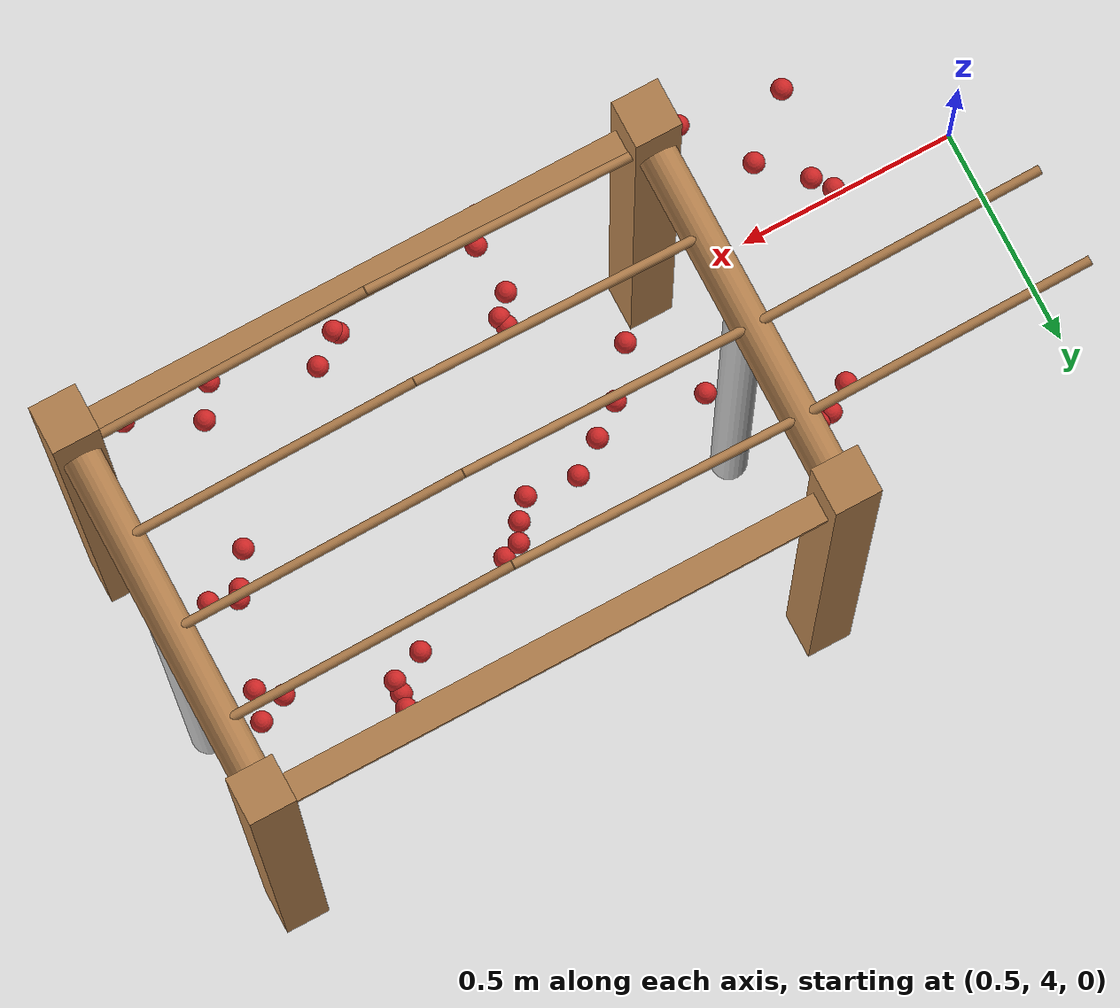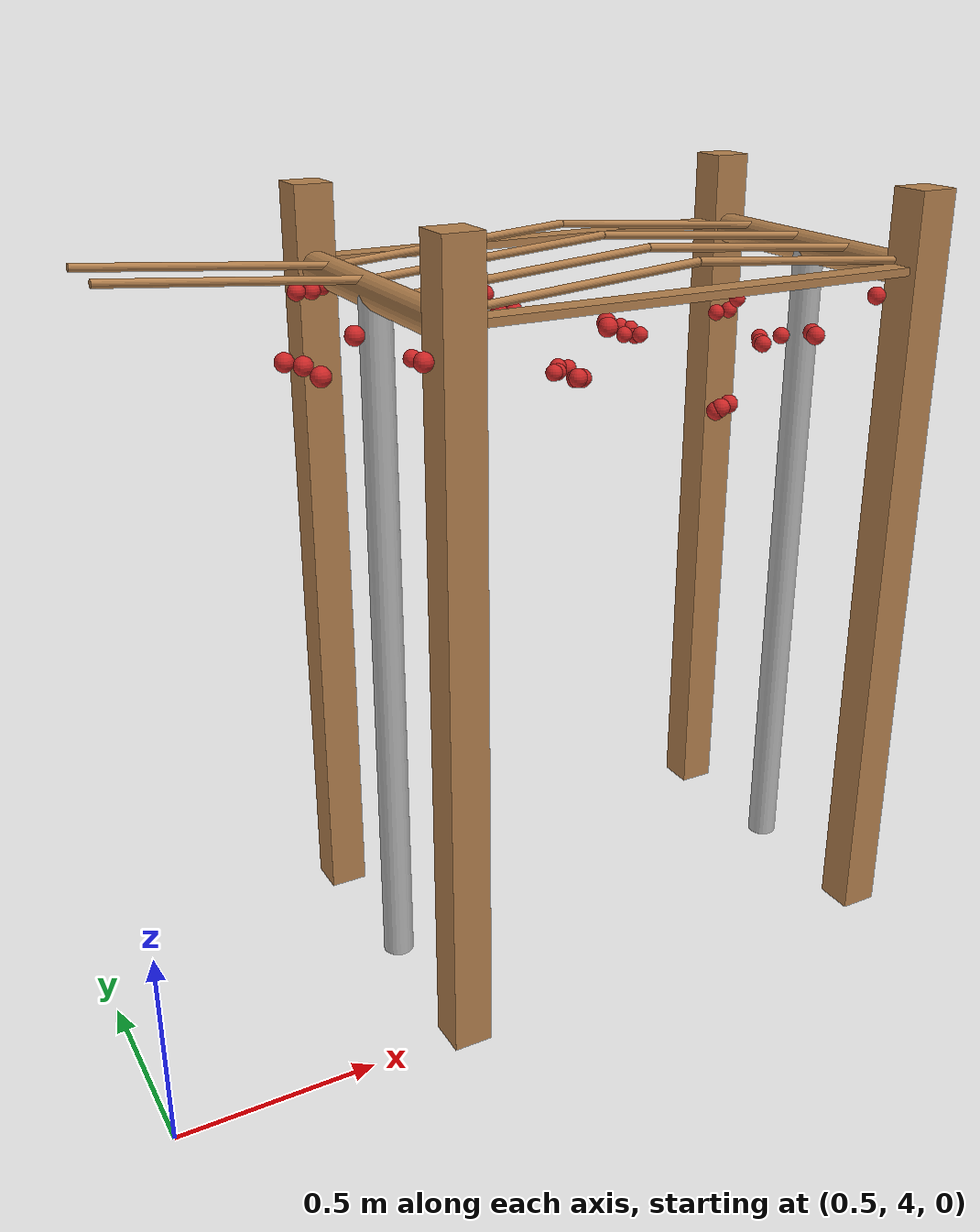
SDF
<sdf version="1.4">
 <model name="pergola">
  <include><name>post_12</name><pose>1.25 4.0 0 0 0 0</pose><uri>model://post</uri></include>
  <include><name>post_13</name><pose>1.25 4.800000000000001 0 0 0 0</pose><uri>model://post</uri></include>
  <include><name>post_19</name><pose>2.5 4.0 0 0 0 0</pose><uri>model://post</uri></include>
  <include><name>post_20</name><pose>2.5 4.800000000000001 0 0 0 0</pose><uri>model://post</uri></include>
  <link name="beam_12">
   <pose>1.875 4.0 1.81 0 0 0</pose>
   <collision name="collision"><geometry><box><size>1.25 0.06 0.02</size></box></geometry></collision>
   <visual name="visual">
    <geometry><box><size>1.25 0.06 0.02</size></box></geometry>
    <material><script><name>Gazebo/Wood</name></script></material>
   </visual>
   <inertial>
    <mass>5</mass>
    <inertia>
     <ixx>0.0016666666666666668</ixx>
     <ixy>0.0</ixy>
     <ixz>0.0</ixz>
     <iyy>0.6525416666666667</iyy>
     <iyz>0.0</iyz>
     <izz>0.6512083333333333</izz>
    </inertia>
   </inertial>
  </link>
  <link name="beam_13">
   <pose>1.875 4.800000000000001 1.81 0 0 0</pose>
   <collision name="collision"><geometry><box><size>1.25 0.06 0.02</size></box></geometry></collision>
   <visual name="visual">
    <geometry><box><size>1.25 0.06 0.02</size></box></geometry>
    <material><script><name>Gazebo/Wood</name></script></material>
   </visual>
   <inertial>
    <mass>5</mass>
    <inertia>
     <ixx>0.0016666666666666668</ixx>
     <ixy>0.0</ixy>
     <ixz>0.0</ixz>
     <iyy>0.6525416666666667</iyy>
     <iyz>0.0</iyz>
     <izz>0.6512083333333333</izz>
    </inertia>
   </inertial>
  </link>
  <include><name>tree_11</name><pose>1.25 4.4 0 0 0 0</pose><uri>model://tree_trunk</uri></include>
  <include><name>tree_17</name><pose>2.5 4.4 0 0 0 0</pose><uri>model://tree_trunk</uri></include>
  <link name="baseBranch_11">
   <pose>1.25 4.4 1.8 1.5707963267948966 0 0</pose>
   <collision name="collision">
    <geometry><cylinder><radius>0.04</radius><length>0.74</length></cylinder></geometry>
   </collision>
   <visual name="visual">
    <geometry><cylinder><radius>0.04</radius><length>0.74</length></cylinder></geometry>
    <material><script><name>Gazebo/WoodFloor</name></script></material>
   </visual>
   <inertial>
    <mass>10</mass>
    <inertia>
     <ixx>0.4603333333333333</ixx>
     <ixy>0.0</ixy>
     <ixz>0.0</ixz>
     <iyy>0.4603333333333333</iyy>
     <iyz>0.0</iyz>
     <izz>0.008</izz>
    </inertia>
   </inertial>
  </link>
  <link name="baseBranch_17">
   <pose>2.5 4.4 1.8 1.5707963267948966 0 0</pose>
   <collision name="collision">
    <geometry><cylinder><radius>0.04</radius><length>0.74</length></cylinder></geometry>
   </collision>
   <visual name="visual">
    <geometry><cylinder><radius>0.04</radius><length>0.74</length></cylinder></geometry>
    <material><script><name>Gazebo/WoodFloor</name></script></material>
   </visual>
   <inertial>
    <mass>10</mass>
    <inertia>
     <ixx>0.4603333333333333</ixx>
     <ixy>0.0</ixy>
     <ixz>0.0</ixz>
     <iyy>0.4603333333333333</iyy>
     <iyz>0.0</iyz>
     <izz>0.008</izz>
    </inertia>
   </inertial>
  </link>
  <link name="vine_45">
   <pose>0.9375 4.430000000000001 1.85 0 -1.4909663410826592 0</pose>
   <collision name="collision">
    <geometry><cylinder><radius>0.01</radius><length>0.6269968101992226</length></cylinder></geometry>
   </collision>
   <visual name="visual">
    <geometry><cylinder><radius>0.01</radius><length>0.6269968101992226</length></cylinder></geometry>
    <material><script><name>Gazebo/WoodFloor</name></script></material>
   </visual>
   <inertial>
    <mass>5</mass>
    <inertia>
     <ixx>0.1639270833333333</ixx>
     <ixy>0.0</ixy>
     <ixz>0.0</ixz>
     <iyy>0.1639270833333333</iyy>
     <iyz>0.0</iyz>
     <izz>0.00025</izz>
    </inertia>
   </inertial>
  </link>
  <link name="vine_47">
   <pose>0.9375 4.630000000000001 1.85 0 -1.4909663410826592 0</pose>
   <collision name="collision">
    <geometry><cylinder><radius>0.01</radius><length>0.6269968101992226</length></cylinder></geometry>
   </collision>
   <visual name="visual">
    <geometry><cylinder><radius>0.01</radius><length>0.6269968101992226</length></cylinder></geometry>
    <material><script><name>Gazebo/WoodFloor</name></script></material>
   </visual>
   <inertial>
    <mass>5</mass>
    <inertia>
     <ixx>0.1639270833333333</ixx>
     <ixy>0.0</ixy>
     <ixz>0.0</ixz>
     <iyy>0.1639270833333333</iyy>
     <iyz>0.0</iyz>
     <izz>0.00025</izz>
    </inertia>
   </inertial>
  </link>
  <link name="vine_88">
   <pose>1.5625 4.03 1.85 0 1.4909663410826592 0</pose>
   <collision name="collision">
    <geometry><cylinder><radius>0.01</radius><length>0.6269968101992226</length></cylinder></geometry>
   </collision>
   <visual name="visual">
    <geometry><cylinder><radius>0.01</radius><length>0.6269968101992226</length></cylinder></geometry>
    <material><script><name>Gazebo/WoodFloor</name></script></material>
   </visual>
   <inertial>
    <mass>5</mass>
    <inertia>
     <ixx>0.1639270833333333</ixx>
     <ixy>0.0</ixy>
     <ixz>0.0</ixz>
     <iyy>0.1639270833333333</iyy>
     <iyz>0.0</iyz>
     <izz>0.00025</izz>
    </inertia>
   </inertial>
  </link>
  <link name="vine_89">
   <pose>2.1875 4.03 1.85 0 -1.4909663410826592 0</pose>
   <collision name="collision">
    <geometry><cylinder><radius>0.01</radius><length>0.6269968101992226</length></cylinder></geometry>
   </collision>
   <visual name="visual">
    <geometry><cylinder><radius>0.01</radius><length>0.6269968101992226</length></cylinder></geometry>
    <material><script><name>Gazebo/WoodFloor</name></script></material>
   </visual>
   <inertial>
    <mass>5</mass>
    <inertia>
     <ixx>0.1639270833333333</ixx>
     <ixy>0.0</ixy>
     <ixz>0.0</ixz>
     <iyy>0.1639270833333333</iyy>
     <iyz>0.0</iyz>
     <izz>0.00025</izz>
    </inertia>
   </inertial>
  </link>
  <link name="vine_90">
   <pose>1.5625 4.23 1.85 0 1.4909663410826592 0</pose>
   <collision name="collision">
    <geometry><cylinder><radius>0.01</radius><length>0.6269968101992226</length></cylinder></geometry>
   </collision>
   <visual name="visual">
    <geometry><cylinder><radius>0.01</radius><length>0.6269968101992226</length></cylinder></geometry>
    <material><script><name>Gazebo/WoodFloor</name></script></material>
   </visual>
   <inertial>
    <mass>5</mass>
    <inertia>
     <ixx>0.1639270833333333</ixx>
     <ixy>0.0</ixy>
     <ixz>0.0</ixz>
     <iyy>0.1639270833333333</iyy>
     <iyz>0.0</iyz>
     <izz>0.00025</izz>
    </inertia>
   </inertial>
  </link>
  <link name="vine_91">
   <pose>2.1875 4.23 1.85 0 -1.4909663410826592 0</pose>
   <collision name="collision">
    <geometry><cylinder><radius>0.01</radius><length>0.6269968101992226</length></cylinder></geometry>
   </collision>
   <visual name="visual">
    <geometry><cylinder><radius>0.01</radius><length>0.6269968101992226</length></cylinder></geometry>
    <material><script><name>Gazebo/WoodFloor</name></script></material>
   </visual>
   <inertial>
    <mass>5</mass>
    <inertia>
     <ixx>0.1639270833333333</ixx>
     <ixy>0.0</ixy>
     <ixz>0.0</ixz>
     <iyy>0.1639270833333333</iyy>
     <iyz>0.0</iyz>
     <izz>0.00025</izz>
    </inertia>
   </inertial>
  </link>
  <link name="vine_92">
   <pose>1.5625 4.430000000000001 1.85 0 1.4909663410826592 0</pose>
   <collision name="collision">
    <geometry><cylinder><radius>0.01</radius><length>0.6269968101992226</length></cylinder></geometry>
   </collision>
   <visual name="visual">
    <geometry><cylinder><radius>0.01</radius><length>0.6269968101992226</length></cylinder></geometry>
    <material><script><name>Gazebo/WoodFloor</name></script></material>
   </visual>
   <inertial>
    <mass>5</mass>
    <inertia>
     <ixx>0.1639270833333333</ixx>
     <ixy>0.0</ixy>
     <ixz>0.0</ixz>
     <iyy>0.1639270833333333</iyy>
     <iyz>0.0</iyz>
     <izz>0.00025</izz>
    </inertia>
   </inertial>
  </link>
  <link name="vine_93">
   <pose>2.1875 4.430000000000001 1.85 0 -1.4909663410826592 0</pose>
   <collision name="collision">
    <geometry><cylinder><radius>0.01</radius><length>0.6269968101992226</length></cylinder></geometry>
   </collision>
   <visual name="visual">
    <geometry><cylinder><radius>0.01</radius><length>0.6269968101992226</length></cylinder></geometry>
    <material><script><name>Gazebo/WoodFloor</name></script></material>
   </visual>
   <inertial>
    <mass>5</mass>
    <inertia>
     <ixx>0.1639270833333333</ixx>
     <ixy>0.0</ixy>
     <ixz>0.0</ixz>
     <iyy>0.1639270833333333</iyy>
     <iyz>0.0</iyz>
     <izz>0.00025</izz>
    </inertia>
   </inertial>
  </link>
  <link name="vine_94">
   <pose>1.5625 4.630000000000001 1.85 0 1.4909663410826592 0</pose>
   <collision name="collision">
    <geometry><cylinder><radius>0.01</radius><length>0.6269968101992226</length></cylinder></geometry>
   </collision>
   <visual name="visual">
    <geometry><cylinder><radius>0.01</radius><length>0.6269968101992226</length></cylinder></geometry>
    <material><script><name>Gazebo/WoodFloor</name></script></material>
   </visual>
   <inertial>
    <mass>5</mass>
    <inertia>
     <ixx>0.1639270833333333</ixx>
     <ixy>0.0</ixy>
     <ixz>0.0</ixz>
     <iyy>0.1639270833333333</iyy>
     <iyz>0.0</iyz>
     <izz>0.00025</izz>
    </inertia>
   </inertial>
  </link>
  <link name="vine_95">
   <pose>2.1875 4.630000000000001 1.85 0 -1.4909663410826592 0</pose>
   <collision name="collision">
    <geometry><cylinder><radius>0.01</radius><length>0.6269968101992226</length></cylinder></geometry>
   </collision>
   <visual name="visual">
    <geometry><cylinder><radius>0.01</radius><length>0.6269968101992226</length></cylinder></geometry>
    <material><script><name>Gazebo/WoodFloor</name></script></material>
   </visual>
   <inertial>
    <mass>5</mass>
    <inertia>
     <ixx>0.1639270833333333</ixx>
     <ixy>0.0</ixy>
     <ixz>0.0</ixz>
     <iyy>0.1639270833333333</iyy>
     <iyz>0.0</iyz>
     <izz>0.00025</izz>
    </inertia>
   </inertial>
  </link>
  <link name="fruit_17">
   <pose>2.3023445476016997 4.31678122183586 1.5794531778473888 0 0 0</pose>
   <collision name="fruit_collision_17"><geometry><sphere><radius>0.022</radius></sphere></geometry></collision>
   <visual name="visual">
    <geometry><sphere><radius>0.022</radius></sphere></geometry>
    <material><script><name>Gazebo/Red</name></script></material>
   </visual>
   <inertial>
    <mass>0.05</mass>
    <inertia>
     <ixx>9.679999999999999e-06</ixx>
     <ixy>0.0</ixy>
     <ixz>0.0</ixz>
     <iyy>9.679999999999999e-06</iyy>
     <iyz>0.0</iyz>
     <izz>9.679999999999999e-06</izz>
    </inertia>
   </inertial>
   <sensor name="fruit_contact_17" type="contact">
    <plugin name="contact_plugin_17" filename="libcontact_plugin.so"/>
    <contact><collision>fruit_collision_17</collision><topic>fruit_contact_topic_17</topic></contact>
   </sensor>
  </link>
  <link name="fruit_33">
   <pose>2.2128082578611226 4.011027911391019 1.6740760998523883 0 0 0</pose>
   <collision name="fruit_collision_33"><geometry><sphere><radius>0.022</radius></sphere></geometry></collision>
   <visual name="visual">
    <geometry><sphere><radius>0.022</radius></sphere></geometry>
    <material><script><name>Gazebo/Red</name></script></material>
   </visual>
   <inertial>
    <mass>0.05</mass>
    <inertia>
     <ixx>9.679999999999999e-06</ixx>
     <ixy>0.0</ixy>
     <ixz>0.0</ixz>
     <iyy>9.679999999999999e-06</iyy>
     <iyz>0.0</iyz>
     <izz>9.679999999999999e-06</izz>
    </inertia>
   </inertial>
   <sensor name="fruit_contact_33" type="contact">
    <plugin name="contact_plugin_33" filename="libcontact_plugin.so"/>
    <contact><collision>fruit_collision_33</collision><topic>fruit_contact_topic_33</topic></contact>
   </sensor>
  </link>
  <link name="fruit_45">
   <pose>2.4134391619221014 4.579029418322086 1.6375383247254454 0 0 0</pose>
   <collision name="fruit_collision_45"><geometry><sphere><radius>0.022</radius></sphere></geometry></collision>
   <visual name="visual">
    <geometry><sphere><radius>0.022</radius></sphere></geometry>
    <material><script><name>Gazebo/Red</name></script></material>
   </visual>
   <inertial>
    <mass>0.05</mass>
    <inertia>
     <ixx>9.679999999999999e-06</ixx>
     <ixy>0.0</ixy>
     <ixz>0.0</ixz>
     <iyy>9.679999999999999e-06</iyy>
     <iyz>0.0</iyz>
     <izz>9.679999999999999e-06</izz>
    </inertia>
   </inertial>
   <sensor name="fruit_contact_45" type="contact">
    <plugin name="contact_plugin_45" filename="libcontact_plugin.so"/>
    <contact><collision>fruit_collision_45</collision><topic>fruit_contact_topic_45</topic></contact>
   </sensor>
  </link>
  <link name="fruit_136">
   <pose>1.6045331217589058 4.465985742847624 1.7045821195008946 0 0 0</pose>
   <collision name="fruit_collision_136"><geometry><sphere><radius>0.022</radius></sphere></geometry></collision>
   <visual name="visual">
    <geometry><sphere><radius>0.022</radius></sphere></geometry>
    <material><script><name>Gazebo/Red</name></script></material>
   </visual>
   <inertial>
    <mass>0.05</mass>
    <inertia>
     <ixx>9.679999999999999e-06</ixx>
     <ixy>0.0</ixy>
     <ixz>0.0</ixz>
     <iyy>9.679999999999999e-06</iyy>
     <iyz>0.0</iyz>
     <izz>9.679999999999999e-06</izz>
    </inertia>
   </inertial>
   <sensor name="fruit_contact_136" type="contact">
    <plugin name="contact_plugin_136" filename="libcontact_plugin.so"/>
    <contact><collision>fruit_collision_136</collision><topic>fruit_contact_topic_136</topic></contact>
   </sensor>
  </link>
  <link name="fruit_145">
   <pose>2.395996253092718 4.015557028166389 1.749990351465493 0 0 0</pose>
   <collision name="fruit_collision_145"><geometry><sphere><radius>0.022</radius></sphere></geometry></collision>
   <visual name="visual">
    <geometry><sphere><radius>0.022</radius></sphere></geometry>
    <material><script><name>Gazebo/Red</name></script></material>
   </visual>
   <inertial>
    <mass>0.05</mass>
    <inertia>
     <ixx>9.679999999999999e-06</ixx>
     <ixy>0.0</ixy>
     <ixz>0.0</ixz>
     <iyy>9.679999999999999e-06</iyy>
     <iyz>0.0</iyz>
     <izz>9.679999999999999e-06</izz>
    </inertia>
   </inertial>
   <sensor name="fruit_contact_145" type="contact">
    <plugin name="contact_plugin_145" filename="libcontact_plugin.so"/>
    <contact><collision>fruit_collision_145</collision><topic>fruit_contact_topic_145</topic></contact>
   </sensor>
  </link>
  <link name="fruit_154">
   <pose>1.4743467809870243 4.335987401753325 1.763781307041705 0 0 0</pose>
   <collision name="fruit_collision_154"><geometry><sphere><radius>0.022</radius></sphere></geometry></collision>
   <visual name="visual">
    <geometry><sphere><radius>0.022</radius></sphere></geometry>
    <material><script><name>Gazebo/Red</name></script></material>
   </visual>
   <inertial>
    <mass>0.05</mass>
    <inertia>
     <ixx>9.679999999999999e-06</ixx>
     <ixy>0.0</ixy>
     <ixz>0.0</ixz>
     <iyy>9.679999999999999e-06</iyy>
     <iyz>0.0</iyz>
     <izz>9.679999999999999e-06</izz>
    </inertia>
   </inertial>
   <sensor name="fruit_contact_154" type="contact">
    <plugin name="contact_plugin_154" filename="libcontact_plugin.so"/>
    <contact><collision>fruit_collision_154</collision><topic>fruit_contact_topic_154</topic></contact>
   </sensor>
  </link>
  <link name="fruit_159">
   <pose>1.76885057961321 4.477601058659588 1.532594292114206 0 0 0</pose>
   <collision name="fruit_collision_159"><geometry><sphere><radius>0.022</radius></sphere></geometry></collision>
   <visual name="visual">
    <geometry><sphere><radius>0.022</radius></sphere></geometry>
    <material><script><name>Gazebo/Red</name></script></material>
   </visual>
   <inertial>
    <mass>0.05</mass>
    <inertia>
     <ixx>9.679999999999999e-06</ixx>
     <ixy>0.0</ixy>
     <ixz>0.0</ixz>
     <iyy>9.679999999999999e-06</iyy>
     <iyz>0.0</iyz>
     <izz>9.679999999999999e-06</izz>
    </inertia>
   </inertial>
   <sensor name="fruit_contact_159" type="contact">
    <plugin name="contact_plugin_159" filename="libcontact_plugin.so"/>
    <contact><collision>fruit_collision_159</collision><topic>fruit_contact_topic_159</topic></contact>
   </sensor>
  </link>
  <link name="fruit_183">
   <pose>2.366886899264782 4.609195706049125 1.5987958391329167 0 0 0</pose>
   <collision name="fruit_collision_183"><geometry><sphere><radius>0.022</radius></sphere></geometry></collision>
   <visual name="visual">
    <geometry><sphere><radius>0.022</radius></sphere></geometry>
    <material><script><name>Gazebo/Red</name></script></material>
   </visual>
   <inertial>
    <mass>0.05</mass>
    <inertia>
     <ixx>9.679999999999999e-06</ixx>
     <ixy>0.0</ixy>
     <ixz>0.0</ixz>
     <iyy>9.679999999999999e-06</iyy>
     <iyz>0.0</iyz>
     <izz>9.679999999999999e-06</izz>
    </inertia>
   </inertial>
   <sensor name="fruit_contact_183" type="contact">
    <plugin name="contact_plugin_183" filename="libcontact_plugin.so"/>
    <contact><collision>fruit_collision_183</collision><topic>fruit_contact_topic_183</topic></contact>
   </sensor>
  </link>
  <link name="fruit_190">
   <pose>1.6196452533873182 4.117535090761163 1.6221635754306007 0 0 0</pose>
   <collision name="fruit_collision_190"><geometry><sphere><radius>0.022</radius></sphere></geometry></collision>
   <visual name="visual">
    <geometry><sphere><radius>0.022</radius></sphere></geometry>
    <material><script><name>Gazebo/Red</name></script></material>
   </visual>
   <inertial>
    <mass>0.05</mass>
    <inertia>
     <ixx>9.679999999999999e-06</ixx>
     <ixy>0.0</ixy>
     <ixz>0.0</ixz>
     <iyy>9.679999999999999e-06</iyy>
     <iyz>0.0</iyz>
     <izz>9.679999999999999e-06</izz>
    </inertia>
   </inertial>
   <sensor name="fruit_contact_190" type="contact">
    <plugin name="contact_plugin_190" filename="libcontact_plugin.so"/>
    <contact><collision>fruit_collision_190</collision><topic>fruit_contact_topic_190</topic></contact>
   </sensor>
  </link>
  <link name="fruit_197">
   <pose>1.090582806405671 4.143708846002086 1.7729883469100727 0 0 0</pose>
   <collision name="fruit_collision_197"><geometry><sphere><radius>0.022</radius></sphere></geometry></collision>
   <visual name="visual">
    <geometry><sphere><radius>0.022</radius></sphere></geometry>
    <material><script><name>Gazebo/Red</name></script></material>
   </visual>
   <inertial>
    <mass>0.05</mass>
    <inertia>
     <ixx>9.679999999999999e-06</ixx>
     <ixy>0.0</ixy>
     <ixz>0.0</ixz>
     <iyy>9.679999999999999e-06</iyy>
     <iyz>0.0</iyz>
     <izz>9.679999999999999e-06</izz>
    </inertia>
   </inertial>
   <sensor name="fruit_contact_197" type="contact">
    <plugin name="contact_plugin_197" filename="libcontact_plugin.so"/>
    <contact><collision>fruit_collision_197</collision><topic>fruit_contact_topic_197</topic></contact>
   </sensor>
  </link>
  <link name="fruit_240">
   <pose>1.1386032613323405 4.606245166013762 1.7765186882272823 0 0 0</pose>
   <collision name="fruit_collision_240"><geometry><sphere><radius>0.022</radius></sphere></geometry></collision>
   <visual name="visual">
    <geometry><sphere><radius>0.022</radius></sphere></geometry>
    <material><script><name>Gazebo/Red</name></script></material>
   </visual>
   <inertial>
    <mass>0.05</mass>
    <inertia>
     <ixx>9.679999999999999e-06</ixx>
     <ixy>0.0</ixy>
     <ixz>0.0</ixz>
     <iyy>9.679999999999999e-06</iyy>
     <iyz>0.0</iyz>
     <izz>9.679999999999999e-06</izz>
    </inertia>
   </inertial>
   <sensor name="fruit_contact_240" type="contact">
    <plugin name="contact_plugin_240" filename="libcontact_plugin.so"/>
    <contact><collision>fruit_collision_240</collision><topic>fruit_contact_topic_240</topic></contact>
   </sensor>
  </link>
  <link name="fruit_285">
   <pose>1.6090735410392167 3.981598978113677 1.766520986323634 0 0 0</pose>
   <collision name="fruit_collision_285"><geometry><sphere><radius>0.022</radius></sphere></geometry></collision>
   <visual name="visual">
    <geometry><sphere><radius>0.022</radius></sphere></geometry>
    <material><script><name>Gazebo/Red</name></script></material>
   </visual>
   <inertial>
    <mass>0.05</mass>
    <inertia>
     <ixx>9.679999999999999e-06</ixx>
     <ixy>0.0</ixy>
     <ixz>0.0</ixz>
     <iyy>9.679999999999999e-06</iyy>
     <iyz>0.0</iyz>
     <izz>9.679999999999999e-06</izz>
    </inertia>
   </inertial>
   <sensor name="fruit_contact_285" type="contact">
    <plugin name="contact_plugin_285" filename="libcontact_plugin.so"/>
    <contact><collision>fruit_collision_285</collision><topic>fruit_contact_topic_285</topic></contact>
   </sensor>
  </link>
  <link name="fruit_326">
   <pose>1.3718786176803666 4.474741547334234 1.6180375001578537 0 0 0</pose>
   <collision name="fruit_collision_326"><geometry><sphere><radius>0.022</radius></sphere></geometry></collision>
   <visual name="visual">
    <geometry><sphere><radius>0.022</radius></sphere></geometry>
    <material><script><name>Gazebo/Red</name></script></material>
   </visual>
   <inertial>
    <mass>0.05</mass>
    <inertia>
     <ixx>9.679999999999999e-06</ixx>
     <ixy>0.0</ixy>
     <ixz>0.0</ixz>
     <iyy>9.679999999999999e-06</iyy>
     <iyz>0.0</iyz>
     <izz>9.679999999999999e-06</izz>
    </inertia>
   </inertial>
   <sensor name="fruit_contact_326" type="contact">
    <plugin name="contact_plugin_326" filename="libcontact_plugin.so"/>
    <contact><collision>fruit_collision_326</collision><topic>fruit_contact_topic_326</topic></contact>
   </sensor>
  </link>
  <link name="fruit_334">
   <pose>2.092919728248342 4.653333202206163 1.5580890787896213 0 0 0</pose>
   <collision name="fruit_collision_334"><geometry><sphere><radius>0.022</radius></sphere></geometry></collision>
   <visual name="visual">
    <geometry><sphere><radius>0.022</radius></sphere></geometry>
    <material><script><name>Gazebo/Red</name></script></material>
   </visual>
   <inertial>
    <mass>0.05</mass>
    <inertia>
     <ixx>9.679999999999999e-06</ixx>
     <ixy>0.0</ixy>
     <ixz>0.0</ixz>
     <iyy>9.679999999999999e-06</iyy>
     <iyz>0.0</iyz>
     <izz>9.679999999999999e-06</izz>
    </inertia>
   </inertial>
   <sensor name="fruit_contact_334" type="contact">
    <plugin name="contact_plugin_334" filename="libcontact_plugin.so"/>
    <contact><collision>fruit_collision_334</collision><topic>fruit_contact_topic_334</topic></contact>
   </sensor>
  </link>
  <link name="fruit_375">
   <pose>2.2542115589626692 4.072395190667561 1.6642560650172284 0 0 0</pose>
   <collision name="fruit_collision_375"><geometry><sphere><radius>0.022</radius></sphere></geometry></collision>
   <visual name="visual">
    <geometry><sphere><radius>0.022</radius></sphere></geometry>
    <material><script><name>Gazebo/Red</name></script></material>
   </visual>
   <inertial>
    <mass>0.05</mass>
    <inertia>
     <ixx>9.679999999999999e-06</ixx>
     <ixy>0.0</ixy>
     <ixz>0.0</ixz>
     <iyy>9.679999999999999e-06</iyy>
     <iyz>0.0</iyz>
     <izz>9.679999999999999e-06</izz>
    </inertia>
   </inertial>
   <sensor name="fruit_contact_375" type="contact">
    <plugin name="contact_plugin_375" filename="libcontact_plugin.so"/>
    <contact><collision>fruit_collision_375</collision><topic>fruit_contact_topic_375</topic></contact>
   </sensor>
  </link>
  <link name="fruit_379">
   <pose>1.80208140701344 4.513638889684674 1.5229505450934033 0 0 0</pose>
   <collision name="fruit_collision_379"><geometry><sphere><radius>0.022</radius></sphere></geometry></collision>
   <visual name="visual">
    <geometry><sphere><radius>0.022</radius></sphere></geometry>
    <material><script><name>Gazebo/Red</name></script></material>
   </visual>
   <inertial>
    <mass>0.05</mass>
    <inertia>
     <ixx>9.679999999999999e-06</ixx>
     <ixy>0.0</ixy>
     <ixz>0.0</ixz>
     <iyy>9.679999999999999e-06</iyy>
     <iyz>0.0</iyz>
     <izz>9.679999999999999e-06</izz>
    </inertia>
   </inertial>
   <sensor name="fruit_contact_379" type="contact">
    <plugin name="contact_plugin_379" filename="libcontact_plugin.so"/>
    <contact><collision>fruit_collision_379</collision><topic>fruit_contact_topic_379</topic></contact>
   </sensor>
  </link>
  <link name="fruit_382">
   <pose>2.0050568671218025 4.0589646872765615 1.5235760095624293 0 0 0</pose>
   <collision name="fruit_collision_382"><geometry><sphere><radius>0.022</radius></sphere></geometry></collision>
   <visual name="visual">
    <geometry><sphere><radius>0.022</radius></sphere></geometry>
    <material><script><name>Gazebo/Red</name></script></material>
   </visual>
   <inertial>
    <mass>0.05</mass>
    <inertia>
     <ixx>9.679999999999999e-06</ixx>
     <ixy>0.0</ixy>
     <ixz>0.0</ixz>
     <iyy>9.679999999999999e-06</iyy>
     <iyz>0.0</iyz>
     <izz>9.679999999999999e-06</izz>
    </inertia>
   </inertial>
   <sensor name="fruit_contact_382" type="contact">
    <plugin name="contact_plugin_382" filename="libcontact_plugin.so"/>
    <contact><collision>fruit_collision_382</collision><topic>fruit_contact_topic_382</topic></contact>
   </sensor>
  </link>
  <link name="fruit_390">
   <pose>1.8605828051786903 4.5619525880003895 1.5147802486571096 0 0 0</pose>
   <collision name="fruit_collision_390"><geometry><sphere><radius>0.022</radius></sphere></geometry></collision>
   <visual name="visual">
    <geometry><sphere><radius>0.022</radius></sphere></geometry>
    <material><script><name>Gazebo/Red</name></script></material>
   </visual>
   <inertial>
    <mass>0.05</mass>
    <inertia>
     <ixx>9.679999999999999e-06</ixx>
     <ixy>0.0</ixy>
     <ixz>0.0</ixz>
     <iyy>9.679999999999999e-06</iyy>
     <iyz>0.0</iyz>
     <izz>9.679999999999999e-06</izz>
    </inertia>
   </inertial>
   <sensor name="fruit_contact_390" type="contact">
    <plugin name="contact_plugin_390" filename="libcontact_plugin.so"/>
    <contact><collision>fruit_collision_390</collision><topic>fruit_contact_topic_390</topic></contact>
   </sensor>
  </link>
  <link name="fruit_414">
   <pose>2.1625793697492717 4.678738466103428 1.5451066393999306 0 0 0</pose>
   <collision name="fruit_collision_414"><geometry><sphere><radius>0.022</radius></sphere></geometry></collision>
   <visual name="visual">
    <geometry><sphere><radius>0.022</radius></sphere></geometry>
    <material><script><name>Gazebo/Red</name></script></material>
   </visual>
   <inertial>
    <mass>0.05</mass>
    <inertia>
     <ixx>9.679999999999999e-06</ixx>
     <ixy>0.0</ixy>
     <ixz>0.0</ixz>
     <iyy>9.679999999999999e-06</iyy>
     <iyz>0.0</iyz>
     <izz>9.679999999999999e-06</izz>
    </inertia>
   </inertial>
   <sensor name="fruit_contact_414" type="contact">
    <plugin name="contact_plugin_414" filename="libcontact_plugin.so"/>
    <contact><collision>fruit_collision_414</collision><topic>fruit_contact_topic_414</topic></contact>
   </sensor>
  </link>
  <link name="fruit_425">
   <pose>0.969363544394502 4.03370130369012 1.7265258182620513 0 0 0</pose>
   <collision name="fruit_collision_425"><geometry><sphere><radius>0.022</radius></sphere></geometry></collision>
   <visual name="visual">
    <geometry><sphere><radius>0.022</radius></sphere></geometry>
    <material><script><name>Gazebo/Red</name></script></material>
   </visual>
   <inertial>
    <mass>0.05</mass>
    <inertia>
     <ixx>9.679999999999999e-06</ixx>
     <ixy>0.0</ixy>
     <ixz>0.0</ixz>
     <iyy>9.679999999999999e-06</iyy>
     <iyz>0.0</iyz>
     <izz>9.679999999999999e-06</izz>
    </inertia>
   </inertial>
   <sensor name="fruit_contact_425" type="contact">
    <plugin name="contact_plugin_425" filename="libcontact_plugin.so"/>
    <contact><collision>fruit_collision_425</collision><topic>fruit_contact_topic_425</topic></contact>
   </sensor>
  </link>
  <link name="fruit_440">
   <pose>1.2199940739459503 4.648199564167318 1.774761943769731 0 0 0</pose>
   <collision name="fruit_collision_440"><geometry><sphere><radius>0.022</radius></sphere></geometry></collision>
   <visual name="visual">
    <geometry><sphere><radius>0.022</radius></sphere></geometry>
    <material><script><name>Gazebo/Red</name></script></material>
   </visual>
   <inertial>
    <mass>0.05</mass>
    <inertia>
     <ixx>9.679999999999999e-06</ixx>
     <ixy>0.0</ixy>
     <ixz>0.0</ixz>
     <iyy>9.679999999999999e-06</iyy>
     <iyz>0.0</iyz>
     <izz>9.679999999999999e-06</izz>
    </inertia>
   </inertial>
   <sensor name="fruit_contact_440" type="contact">
    <plugin name="contact_plugin_440" filename="libcontact_plugin.so"/>
    <contact><collision>fruit_collision_440</collision><topic>fruit_contact_topic_440</topic></contact>
   </sensor>
  </link>
  <link name="fruit_443">
   <pose>2.4286321351441136 4.634460236510969 1.594933413786202 0 0 0</pose>
   <collision name="fruit_collision_443"><geometry><sphere><radius>0.022</radius></sphere></geometry></collision>
   <visual name="visual">
    <geometry><sphere><radius>0.022</radius></sphere></geometry>
    <material><script><name>Gazebo/Red</name></script></material>
   </visual>
   <inertial>
    <mass>0.05</mass>
    <inertia>
     <ixx>9.679999999999999e-06</ixx>
     <ixy>0.0</ixy>
     <ixz>0.0</ixz>
     <iyy>9.679999999999999e-06</iyy>
     <iyz>0.0</iyz>
     <izz>9.679999999999999e-06</izz>
    </inertia>
   </inertial>
   <sensor name="fruit_contact_443" type="contact">
    <plugin name="contact_plugin_443" filename="libcontact_plugin.so"/>
    <contact><collision>fruit_collision_443</collision><topic>fruit_contact_topic_443</topic></contact>
   </sensor>
  </link>
  <link name="fruit_445">
   <pose>2.3441843902508004 4.380609453607046 1.5655896221542562 0 0 0</pose>
   <collision name="fruit_collision_445"><geometry><sphere><radius>0.022</radius></sphere></geometry></collision>
   <visual name="visual">
    <geometry><sphere><radius>0.022</radius></sphere></geometry>
    <material><script><name>Gazebo/Red</name></script></material>
   </visual>
   <inertial>
    <mass>0.05</mass>
    <inertia>
     <ixx>9.679999999999999e-06</ixx>
     <ixy>0.0</ixy>
     <ixz>0.0</ixz>
     <iyy>9.679999999999999e-06</iyy>
     <iyz>0.0</iyz>
     <izz>9.679999999999999e-06</izz>
    </inertia>
   </inertial>
   <sensor name="fruit_contact_445" type="contact">
    <plugin name="contact_plugin_445" filename="libcontact_plugin.so"/>
    <contact><collision>fruit_collision_445</collision><topic>fruit_contact_topic_445</topic></contact>
   </sensor>
  </link>
  <link name="fruit_448">
   <pose>2.4110111796496656 4.377498043411861 1.5764229050815468 0 0 0</pose>
   <collision name="fruit_collision_448"><geometry><sphere><radius>0.022</radius></sphere></geometry></collision>
   <visual name="visual">
    <geometry><sphere><radius>0.022</radius></sphere></geometry>
    <material><script><name>Gazebo/Red</name></script></material>
   </visual>
   <inertial>
    <mass>0.05</mass>
    <inertia>
     <ixx>9.679999999999999e-06</ixx>
     <ixy>0.0</ixy>
     <ixz>0.0</ixz>
     <iyy>9.679999999999999e-06</iyy>
     <iyz>0.0</iyz>
     <izz>9.679999999999999e-06</izz>
    </inertia>
   </inertial>
   <sensor name="fruit_contact_448" type="contact">
    <plugin name="contact_plugin_448" filename="libcontact_plugin.so"/>
    <contact><collision>fruit_collision_448</collision><topic>fruit_contact_topic_448</topic></contact>
   </sensor>
  </link>
  <link name="fruit_469">
   <pose>2.3556820895544623 4.39868824510015 1.5737770149086143 0 0 0</pose>
   <collision name="fruit_collision_469"><geometry><sphere><radius>0.022</radius></sphere></geometry></collision>
   <visual name="visual">
    <geometry><sphere><radius>0.022</radius></sphere></geometry>
    <material><script><name>Gazebo/Red</name></script></material>
   </visual>
   <inertial>
    <mass>0.05</mass>
    <inertia>
     <ixx>9.679999999999999e-06</ixx>
     <ixy>0.0</ixy>
     <ixz>0.0</ixz>
     <iyy>9.679999999999999e-06</iyy>
     <iyz>0.0</iyz>
     <izz>9.679999999999999e-06</izz>
    </inertia>
   </inertial>
   <sensor name="fruit_contact_469" type="contact">
    <plugin name="contact_plugin_469" filename="libcontact_plugin.so"/>
    <contact><collision>fruit_collision_469</collision><topic>fruit_contact_topic_469</topic></contact>
   </sensor>
  </link>
  <link name="fruit_499">
   <pose>1.6386886909739429 4.0334408992210005 1.76286384969546 0 0 0</pose>
   <collision name="fruit_collision_499"><geometry><sphere><radius>0.022</radius></sphere></geometry></collision>
   <visual name="visual">
    <geometry><sphere><radius>0.022</radius></sphere></geometry>
    <material><script><name>Gazebo/Red</name></script></material>
   </visual>
   <inertial>
    <mass>0.05</mass>
    <inertia>
     <ixx>9.679999999999999e-06</ixx>
     <ixy>0.0</ixy>
     <ixz>0.0</ixz>
     <iyy>9.679999999999999e-06</iyy>
     <iyz>0.0</iyz>
     <izz>9.679999999999999e-06</izz>
    </inertia>
   </inertial>
   <sensor name="fruit_contact_499" type="contact">
    <plugin name="contact_plugin_499" filename="libcontact_plugin.so"/>
    <contact><collision>fruit_collision_499</collision><topic>fruit_contact_topic_499</topic></contact>
   </sensor>
  </link>
  <link name="fruit_507">
   <pose>1.1903513208370333 4.641740553347268 1.7681927173646999 0 0 0</pose>
   <collision name="fruit_collision_507"><geometry><sphere><radius>0.022</radius></sphere></geometry></collision>
   <visual name="visual">
    <geometry><sphere><radius>0.022</radius></sphere></geometry>
    <material><script><name>Gazebo/Red</name></script></material>
   </visual>
   <inertial>
    <mass>0.05</mass>
    <inertia>
     <ixx>9.679999999999999e-06</ixx>
     <ixy>0.0</ixy>
     <ixz>0.0</ixz>
     <iyy>9.679999999999999e-06</iyy>
     <iyz>0.0</iyz>
     <izz>9.679999999999999e-06</izz>
    </inertia>
   </inertial>
   <sensor name="fruit_contact_507" type="contact">
    <plugin name="contact_plugin_507" filename="libcontact_plugin.so"/>
    <contact><collision>fruit_collision_507</collision><topic>fruit_contact_topic_507</topic></contact>
   </sensor>
  </link>
  <link name="fruit_540">
   <pose>1.2492274360470208 3.9877101032579088 1.7418820143871976 0 0 0</pose>
   <collision name="fruit_collision_540"><geometry><sphere><radius>0.022</radius></sphere></geometry></collision>
   <visual name="visual">
    <geometry><sphere><radius>0.022</radius></sphere></geometry>
    <material><script><name>Gazebo/Red</name></script></material>
   </visual>
   <inertial>
    <mass>0.05</mass>
    <inertia>
     <ixx>9.679999999999999e-06</ixx>
     <ixy>0.0</ixy>
     <ixz>0.0</ixz>
     <iyy>9.679999999999999e-06</iyy>
     <iyz>0.0</iyz>
     <izz>9.679999999999999e-06</izz>
    </inertia>
   </inertial>
   <sensor name="fruit_contact_540" type="contact">
    <plugin name="contact_plugin_540" filename="libcontact_plugin.so"/>
    <contact><collision>fruit_collision_540</collision><topic>fruit_contact_topic_540</topic></contact>
   </sensor>
  </link>
  <link name="fruit_564">
   <pose>1.544862093058404 4.4270625919358935 1.7634213975510624 0 0 0</pose>
   <collision name="fruit_collision_564"><geometry><sphere><radius>0.022</radius></sphere></geometry></collision>
   <visual name="visual">
    <geometry><sphere><radius>0.022</radius></sphere></geometry>
    <material><script><name>Gazebo/Red</name></script></material>
   </visual>
   <inertial>
    <mass>0.05</mass>
    <inertia>
     <ixx>9.679999999999999e-06</ixx>
     <ixy>0.0</ixy>
     <ixz>0.0</ixz>
     <iyy>9.679999999999999e-06</iyy>
     <iyz>0.0</iyz>
     <izz>9.679999999999999e-06</izz>
    </inertia>
   </inertial>
   <sensor name="fruit_contact_564" type="contact">
    <plugin name="contact_plugin_564" filename="libcontact_plugin.so"/>
    <contact><collision>fruit_collision_564</collision><topic>fruit_contact_topic_564</topic></contact>
   </sensor>
  </link>
  <link name="fruit_575">
   <pose>0.9994856736138985 4.211354401634028 1.7042670356136964 0 0 0</pose>
   <collision name="fruit_collision_575"><geometry><sphere><radius>0.022</radius></sphere></geometry></collision>
   <visual name="visual">
    <geometry><sphere><radius>0.022</radius></sphere></geometry>
    <material><script><name>Gazebo/Red</name></script></material>
   </visual>
   <inertial>
    <mass>0.05</mass>
    <inertia>
     <ixx>9.679999999999999e-06</ixx>
     <ixy>0.0</ixy>
     <ixz>0.0</ixz>
     <iyy>9.679999999999999e-06</iyy>
     <iyz>0.0</iyz>
     <izz>9.679999999999999e-06</izz>
    </inertia>
   </inertial>
   <sensor name="fruit_contact_575" type="contact">
    <plugin name="contact_plugin_575" filename="libcontact_plugin.so"/>
    <contact><collision>fruit_collision_575</collision><topic>fruit_contact_topic_575</topic></contact>
   </sensor>
  </link>
  <link name="fruit_607">
   <pose>1.2267860036894709 4.005173164432568 1.7443408516047467 0 0 0</pose>
   <collision name="fruit_collision_607"><geometry><sphere><radius>0.022</radius></sphere></geometry></collision>
   <visual name="visual">
    <geometry><sphere><radius>0.022</radius></sphere></geometry>
    <material><script><name>Gazebo/Red</name></script></material>
   </visual>
   <inertial>
    <mass>0.05</mass>
    <inertia>
     <ixx>9.679999999999999e-06</ixx>
     <ixy>0.0</ixy>
     <ixz>0.0</ixz>
     <iyy>9.679999999999999e-06</iyy>
     <iyz>0.0</iyz>
     <izz>9.679999999999999e-06</izz>
    </inertia>
   </inertial>
   <sensor name="fruit_contact_607" type="contact">
    <plugin name="contact_plugin_607" filename="libcontact_plugin.so"/>
    <contact><collision>fruit_collision_607</collision><topic>fruit_contact_topic_607</topic></contact>
   </sensor>
  </link>
  <link name="fruit_617">
   <pose>2.162701546734583 4.705587040281758 1.536251204709985 0 0 0</pose>
   <collision name="fruit_collision_617"><geometry><sphere><radius>0.022</radius></sphere></geometry></collision>
   <visual name="visual">
    <geometry><sphere><radius>0.022</radius></sphere></geometry>
    <material><script><name>Gazebo/Red</name></script></material>
   </visual>
   <inertial>
    <mass>0.05</mass>
    <inertia>
     <ixx>9.679999999999999e-06</ixx>
     <ixy>0.0</ixy>
     <ixz>0.0</ixz>
     <iyy>9.679999999999999e-06</iyy>
     <iyz>0.0</iyz>
     <izz>9.679999999999999e-06</izz>
    </inertia>
   </inertial>
   <sensor name="fruit_contact_617" type="contact">
    <plugin name="contact_plugin_617" filename="libcontact_plugin.so"/>
    <contact><collision>fruit_collision_617</collision><topic>fruit_contact_topic_617</topic></contact>
   </sensor>
  </link>
  <link name="fruit_638">
   <pose>1.6712563333167947 4.512034324220998 1.694786434660942 0 0 0</pose>
   <collision name="fruit_collision_638"><geometry><sphere><radius>0.022</radius></sphere></geometry></collision>
   <visual name="visual">
    <geometry><sphere><radius>0.022</radius></sphere></geometry>
    <material><script><name>Gazebo/Red</name></script></material>
   </visual>
   <inertial>
    <mass>0.05</mass>
    <inertia>
     <ixx>9.679999999999999e-06</ixx>
     <ixy>0.0</ixy>
     <ixz>0.0</ixz>
     <iyy>9.679999999999999e-06</iyy>
     <iyz>0.0</iyz>
     <izz>9.679999999999999e-06</izz>
    </inertia>
   </inertial>
   <sensor name="fruit_contact_638" type="contact">
    <plugin name="contact_plugin_638" filename="libcontact_plugin.so"/>
    <contact><collision>fruit_collision_638</collision><topic>fruit_contact_topic_638</topic></contact>
   </sensor>
  </link>
  <link name="fruit_646">
   <pose>2.1683235040086606 4.736891609891364 1.549973005557385 0 0 0</pose>
   <collision name="fruit_collision_646"><geometry><sphere><radius>0.022</radius></sphere></geometry></collision>
   <visual name="visual">
    <geometry><sphere><radius>0.022</radius></sphere></geometry>
    <material><script><name>Gazebo/Red</name></script></material>
   </visual>
   <inertial>
    <mass>0.05</mass>
    <inertia>
     <ixx>9.679999999999999e-06</ixx>
     <ixy>0.0</ixy>
     <ixz>0.0</ixz>
     <iyy>9.679999999999999e-06</iyy>
     <iyz>0.0</iyz>
     <izz>9.679999999999999e-06</izz>
    </inertia>
   </inertial>
   <sensor name="fruit_contact_646" type="contact">
    <plugin name="contact_plugin_646" filename="libcontact_plugin.so"/>
    <contact><collision>fruit_collision_646</collision><topic>fruit_contact_topic_646</topic></contact>
   </sensor>
  </link>
  <link name="fruit_656">
   <pose>1.9384488548025134 4.019508888690039 1.5258158950672507 0 0 0</pose>
   <collision name="fruit_collision_656"><geometry><sphere><radius>0.022</radius></sphere></geometry></collision>
   <visual name="visual">
    <geometry><sphere><radius>0.022</radius></sphere></geometry>
    <material><script><name>Gazebo/Red</name></script></material>
   </visual>
   <inertial>
    <mass>0.05</mass>
    <inertia>
     <ixx>9.679999999999999e-06</ixx>
     <ixy>0.0</ixy>
     <ixz>0.0</ixz>
     <iyy>9.679999999999999e-06</iyy>
     <iyz>0.0</iyz>
     <izz>9.679999999999999e-06</izz>
    </inertia>
   </inertial>
   <sensor name="fruit_contact_656" type="contact">
    <plugin name="contact_plugin_656" filename="libcontact_plugin.so"/>
    <contact><collision>fruit_collision_656</collision><topic>fruit_contact_topic_656</topic></contact>
   </sensor>
  </link>
  <link name="fruit_666">
   <pose>0.9713718823232423 4.249898847534668 1.7070452970582926 0 0 0</pose>
   <collision name="fruit_collision_666"><geometry><sphere><radius>0.022</radius></sphere></geometry></collision>
   <visual name="visual">
    <geometry><sphere><radius>0.022</radius></sphere></geometry>
    <material><script><name>Gazebo/Red</name></script></material>
   </visual>
   <inertial>
    <mass>0.05</mass>
    <inertia>
     <ixx>9.679999999999999e-06</ixx>
     <ixy>0.0</ixy>
     <ixz>0.0</ixz>
     <iyy>9.679999999999999e-06</iyy>
     <iyz>0.0</iyz>
     <izz>9.679999999999999e-06</izz>
    </inertia>
   </inertial>
   <sensor name="fruit_contact_666" type="contact">
    <plugin name="contact_plugin_666" filename="libcontact_plugin.so"/>
    <contact><collision>fruit_collision_666</collision><topic>fruit_contact_topic_666</topic></contact>
   </sensor>
  </link>
  <link name="fruit_685">
   <pose>2.148165376532377 4.758325208476429 1.5544338037796328 0 0 0</pose>
   <collision name="fruit_collision_685"><geometry><sphere><radius>0.022</radius></sphere></geometry></collision>
   <visual name="visual">
    <geometry><sphere><radius>0.022</radius></sphere></geometry>
    <material><script><name>Gazebo/Red</name></script></material>
   </visual>
   <inertial>
    <mass>0.05</mass>
    <inertia>
     <ixx>9.679999999999999e-06</ixx>
     <ixy>0.0</ixy>
     <ixz>0.0</ixz>
     <iyy>9.679999999999999e-06</iyy>
     <iyz>0.0</iyz>
     <izz>9.679999999999999e-06</izz>
    </inertia>
   </inertial>
   <sensor name="fruit_contact_685" type="contact">
    <plugin name="contact_plugin_685" filename="libcontact_plugin.so"/>
    <contact><collision>fruit_collision_685</collision><topic>fruit_contact_topic_685</topic></contact>
   </sensor>
  </link>
  <link name="fruit_687">
   <pose>1.9462828772449425 4.012339246300793 1.5338291899403385 0 0 0</pose>
   <collision name="fruit_collision_687"><geometry><sphere><radius>0.022</radius></sphere></geometry></collision>
   <visual name="visual">
    <geometry><sphere><radius>0.022</radius></sphere></geometry>
    <material><script><name>Gazebo/Red</name></script></material>
   </visual>
   <inertial>
    <mass>0.05</mass>
    <inertia>
     <ixx>9.679999999999999e-06</ixx>
     <ixy>0.0</ixy>
     <ixz>0.0</ixz>
     <iyy>9.679999999999999e-06</iyy>
     <iyz>0.0</iyz>
     <izz>9.679999999999999e-06</izz>
    </inertia>
   </inertial>
   <sensor name="fruit_contact_687" type="contact">
    <plugin name="contact_plugin_687" filename="libcontact_plugin.so"/>
    <contact><collision>fruit_collision_687</collision><topic>fruit_contact_topic_687</topic></contact>
   </sensor>
  </link>
  <link name="fruit_701">
   <pose>1.823278457294201 4.550912561193405 1.5247620680292184 0 0 0</pose>
   <collision name="fruit_collision_701"><geometry><sphere><radius>0.022</radius></sphere></geometry></collision>
   <visual name="visual">
    <geometry><sphere><radius>0.022</radius></sphere></geometry>
    <material><script><name>Gazebo/Red</name></script></material>
   </visual>
   <inertial>
    <mass>0.05</mass>
    <inertia>
     <ixx>9.679999999999999e-06</ixx>
     <ixy>0.0</ixy>
     <ixz>0.0</ixz>
     <iyy>9.679999999999999e-06</iyy>
     <iyz>0.0</iyz>
     <izz>9.679999999999999e-06</izz>
    </inertia>
   </inertial>
   <sensor name="fruit_contact_701" type="contact">
    <plugin name="contact_plugin_701" filename="libcontact_plugin.so"/>
    <contact><collision>fruit_collision_701</collision><topic>fruit_contact_topic_701</topic></contact>
   </sensor>
  </link>
  <link name="fruit_756">
   <pose>1.6482500954935082 4.173337862059802 1.6041852651398256 0 0 0</pose>
   <collision name="fruit_collision_756"><geometry><sphere><radius>0.022</radius></sphere></geometry></collision>
   <visual name="visual">
    <geometry><sphere><radius>0.022</radius></sphere></geometry>
    <material><script><name>Gazebo/Red</name></script></material>
   </visual>
   <inertial>
    <mass>0.05</mass>
    <inertia>
     <ixx>9.679999999999999e-06</ixx>
     <ixy>0.0</ixy>
     <ixz>0.0</ixz>
     <iyy>9.679999999999999e-06</iyy>
     <iyz>0.0</iyz>
     <izz>9.679999999999999e-06</izz>
    </inertia>
   </inertial>
   <sensor name="fruit_contact_756" type="contact">
    <plugin name="contact_plugin_756" filename="libcontact_plugin.so"/>
    <contact><collision>fruit_collision_756</collision><topic>fruit_contact_topic_756</topic></contact>
   </sensor>
  </link>
  <link name="fruit_768">
   <pose>1.6537949539001424 4.153997333871725 1.6087019828579674 0 0 0</pose>
   <collision name="fruit_collision_768"><geometry><sphere><radius>0.022</radius></sphere></geometry></collision>
   <visual name="visual">
    <geometry><sphere><radius>0.022</radius></sphere></geometry>
    <material><script><name>Gazebo/Red</name></script></material>
   </visual>
   <inertial>
    <mass>0.05</mass>
    <inertia>
     <ixx>9.679999999999999e-06</ixx>
     <ixy>0.0</ixy>
     <ixz>0.0</ixz>
     <iyy>9.679999999999999e-06</iyy>
     <iyz>0.0</iyz>
     <izz>9.679999999999999e-06</izz>
    </inertia>
   </inertial>
   <sensor name="fruit_contact_768" type="contact">
    <plugin name="contact_plugin_768" filename="libcontact_plugin.so"/>
    <contact><collision>fruit_collision_768</collision><topic>fruit_contact_topic_768</topic></contact>
   </sensor>
  </link>
  <link name="fruit_774">
   <pose>1.181320808895414 4.004065765833632 1.7368146430146054 0 0 0</pose>
   <collision name="fruit_collision_774"><geometry><sphere><radius>0.022</radius></sphere></geometry></collision>
   <visual name="visual">
    <geometry><sphere><radius>0.022</radius></sphere></geometry>
    <material><script><name>Gazebo/Red</name></script></material>
   </visual>
   <inertial>
    <mass>0.05</mass>
    <inertia>
     <ixx>9.679999999999999e-06</ixx>
     <ixy>0.0</ixy>
     <ixz>0.0</ixz>
     <iyy>9.679999999999999e-06</iyy>
     <iyz>0.0</iyz>
     <izz>9.679999999999999e-06</izz>
    </inertia>
   </inertial>
   <sensor name="fruit_contact_774" type="contact">
    <plugin name="contact_plugin_774" filename="libcontact_plugin.so"/>
    <contact><collision>fruit_collision_774</collision><topic>fruit_contact_topic_774</topic></contact>
   </sensor>
  </link>
 </model>
</sdf>
